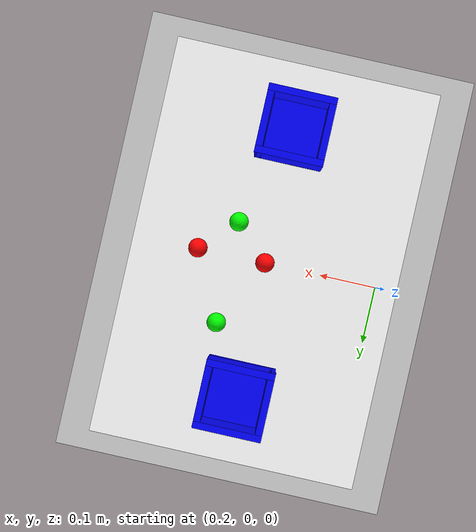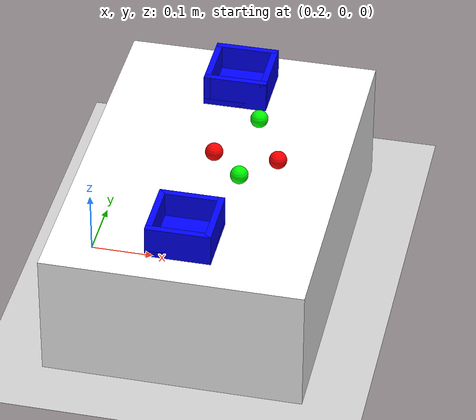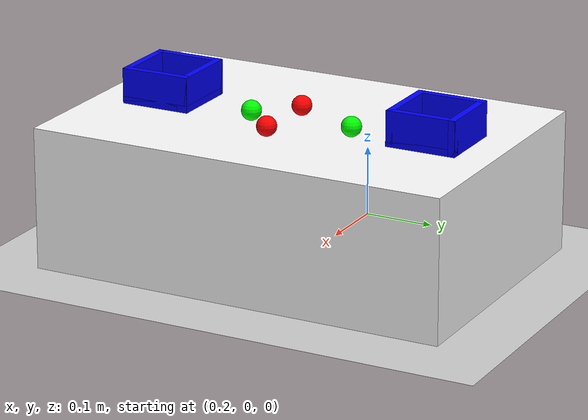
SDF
<?xml version="1.0" ?>
<sdf version="1.9">
  <world name="pick_and_place_world">
    <!-- Essential Gazebo Harmonic Plugins -->
    <plugin filename="gz-sim-physics-system" name="gz::sim::systems::Physics"></plugin>
    <plugin filename="gz-sim-scene-broadcaster-system" name="gz::sim::systems::SceneBroadcaster"></plugin>
    <plugin filename="gz-sim-user-commands-system" name="gz::sim::systems::UserCommands"></plugin>
    <plugin filename="gz-sim-sensors-system" name="gz::sim::systems::Sensors">
      <render_engine>ogre2</render_engine>
    </plugin>

    <!-- The Sun -->
    <light type="directional" name="sun">
      <cast_shadows>true</cast_shadows>
      <pose>0 0 10 0 0 0</pose>
      <diffuse>0.8 0.8 0.8 1</diffuse>
      <specular>0.2 0.2 0.2 1</specular>
      <direction>-0.5 0.1 -0.9</direction>
    </light>

    <!-- The Ground -->
    <model name="ground_plane">
      <static>true</static>
      <link name="link">
        <collision name="collision">
          <geometry><plane><normal>0 0 1</normal><size>100 100</size></plane></geometry>
        </collision>
        <visual name="visual">
          <geometry><plane><normal>0 0 1</normal><size>100 100</size></plane></geometry>
          <material><ambient>0.8 0.8 0.8 1</ambient><diffuse>0.8 0.8 0.8 1</diffuse></material>
        </visual>
      </link>
    </model>

    <!-- The Table (placed 40cm in front of the robot) -->
    <model name="table">
      <static>true</static>
      <pose>0.4 0 0.1 0 0 0</pose> <!-- x=0.4m, z=0.1m height -->
      <link name="link">
        <collision name="collision"><geometry><box><size>0.4 0.6 0.2</size></box></geometry></collision>
        <visual name="visual">
          <geometry><box><size>0.4 0.6 0.2</size></box></geometry>
          <material>
            <ambient>1 1 1 1</ambient>
            <diffuse>1 1 1 1</diffuse>
            <pbr>
              <metal>
                <albedo_map>materials/textures/chessboard.png</albedo_map>
                <scale>0.05 0.05</scale>
              </metal>
            </pbr>
          </material>
        </visual>
      </link>
    </model>

    <model name="red_ball">
      <static>false</static>
      <pose>0.4 0.0 0.22 0 0 0</pose>
      <link name="link">
        <collision name="collision"><geometry><sphere><radius>0.014</radius></sphere></geometry></collision>
        <visual name="visual">
          <geometry><sphere><radius>0.014</radius></sphere></geometry>
          <material><ambient>1 0 0 1</ambient><diffuse>1 0 0 1</diffuse></material>
        </visual>
        <inertial><mass>0.05</mass><inertia><ixx>1e-5</ixx><iyy>1e-5</iyy><izz>1e-5</izz></inertia></inertial>
      </link>
    </model>

    <model name="red_ball_2">
      <static>false</static>
      <pose>0.5 0.0 0.22 0 0 0</pose>
      <link name="link">
        <collision name="collision"><geometry><sphere><radius>0.014</radius></sphere></geometry></collision>
        <visual name="visual">
          <geometry><sphere><radius>0.014</radius></sphere></geometry>
          <material><ambient>1 0 0 1</ambient><diffuse>1 0 0 1</diffuse></material>
        </visual>
        <inertial><mass>0.05</mass><inertia><ixx>1e-5</ixx><iyy>1e-5</iyy><izz>1e-5</izz></inertia></inertial>
      </link>
    </model>

    <model name="green_ball">
      <static>false</static>
      <pose>0.45 0.1 0.22 0 0 0</pose>
      <link name="link">
        <collision name="collision"><geometry><sphere><radius>0.014</radius></sphere></geometry></collision>
        <visual name="visual">
          <geometry><sphere><radius>0.014</radius></sphere></geometry>
          <material><ambient>0 1 0 1</ambient><diffuse>0 1 0 1</diffuse></material>
        </visual>
        <inertial><mass>0.05</mass><inertia><ixx>1e-5</ixx><iyy>1e-5</iyy><izz>1e-5</izz></inertia></inertial>
      </link>
    </model>

    <model name="green_ball_2">
      <static>false</static>
      <pose>0.45 -0.05 0.22 0 0 0</pose>
      <link name="link">
        <collision name="collision"><geometry><sphere><radius>0.014</radius></sphere></geometry></collision>
        <visual name="visual">
          <geometry><sphere><radius>0.014</radius></sphere></geometry>
          <material><ambient>0 1 0 1</ambient><diffuse>0 1 0 1</diffuse></material>
        </visual>
        <inertial><mass>0.05</mass><inertia><ixx>1e-5</ixx><iyy>1e-5</iyy><izz>1e-5</izz></inertia></inertial>
      </link>
    </model>

    <model name="box_1">
      <static>true</static>
      <pose>0.4 -0.2 0.2 0 0 0</pose>

      <link name="floor">
        <pose>0 0 0 0 0 0</pose>
        <collision name="c"><geometry><box><size>0.1 0.1 0.02</size></box></geometry></collision>
        <visual name="v"><geometry><box><size>0.1 0.1 0.02</size></box></geometry><material><ambient>0 0 1 1</ambient><diffuse>0 0 1 1</diffuse></material></visual>
      </link>
      <link name="left_wall">
        <pose>0 0.045 0 0 0 0</pose>
        <collision name="c"><geometry><box><size>0.1 0.01 0.1</size></box></geometry></collision>
        <visual name="v"><geometry><box><size>0.1 0.01 0.1</size></box></geometry><material><ambient>0 0 1 1</ambient><diffuse>0 0 1 1</diffuse></material></visual>
      </link>
      <link name="right_wall">
        <pose>0 -0.045 0 0 0 0</pose>
        <collision name="c"><geometry><box><size>0.1 0.01 0.1</size></box></geometry></collision>
        <visual name="v"><geometry><box><size>0.1 0.01 0.1</size></box></geometry><material><ambient>0 0 1 1</ambient><diffuse>0 0 1 1</diffuse></material></visual>
      </link>
      <link name="front_wall">
        <pose>0.045 0 0 0 0 0</pose>
        <collision name="c"><geometry><box><size>0.01 0.1 0.1</size></box></geometry></collision>
        <visual name="v"><geometry><box><size>0.01 0.1 0.1</size></box></geometry><material><ambient>0 0 1 1</ambient><diffuse>0 0 1 1</diffuse></material></visual>
      </link>
      <link name="back_wall">
        <pose>-0.045 0 0 0 0 0</pose>
        <collision name="c"><geometry><box><size>0.01 0.1 0.1</size></box></geometry></collision>
        <visual name="v"><geometry><box><size>0.01 0.1 0.1</size></box></geometry><material><ambient>0 0 1 1</ambient><diffuse>0 0 1 1</diffuse></material></visual>
      </link>
    </model>

    <model name="box_2">
      <static>true</static>
      <pose>0.4 0.2 0.2 0 0 0</pose>

      <link name="floor">
        <pose>0 0 0 0 0 0</pose>
        <collision name="c"><geometry><box><size>0.1 0.1 0.02</size></box></geometry></collision>
        <visual name="v"><geometry><box><size>0.1 0.1 0.02</size></box></geometry><material><ambient>0 0 1 1</ambient><diffuse>0 0 1 1</diffuse></material></visual>
      </link>
      <link name="left_wall">
        <pose>0 0.045 0 0 0 0</pose>
        <collision name="c"><geometry><box><size>0.1 0.01 0.1</size></box></geometry></collision>
        <visual name="v"><geometry><box><size>0.1 0.01 0.1</size></box></geometry><material><ambient>0 0 1 1</ambient><diffuse>0 0 1 1</diffuse></material></visual>
      </link>
      <link name="right_wall">
        <pose>0 -0.045 0 0 0 0</pose>
        <collision name="c"><geometry><box><size>0.1 0.01 0.1</size></box></geometry></collision>
        <visual name="v"><geometry><box><size>0.1 0.01 0.1</size></box></geometry><material><ambient>0 0 1 1</ambient><diffuse>0 0 1 1</diffuse></material></visual>
      </link>
      <link name="front_wall">
        <pose>0.045 0 0 0 0 0</pose>
        <collision name="c"><geometry><box><size>0.01 0.1 0.1</size></box></geometry></collision>
        <visual name="v"><geometry><box><size>0.01 0.1 0.1</size></box></geometry><material><ambient>0 0 1 1</ambient><diffuse>0 0 1 1</diffuse></material></visual>
      </link>
      <link name="back_wall">
        <pose>-0.045 0 0 0 0 0</pose>
        <collision name="c"><geometry><box><size>0.01 0.1 0.1</size></box></geometry></collision>
        <visual name="v"><geometry><box><size>0.01 0.1 0.1</size></box></geometry><material><ambient>0 0 1 1</ambient><diffuse>0 0 1 1</diffuse></material></visual>
      </link>
    </model>

  </world>
</sdf>
